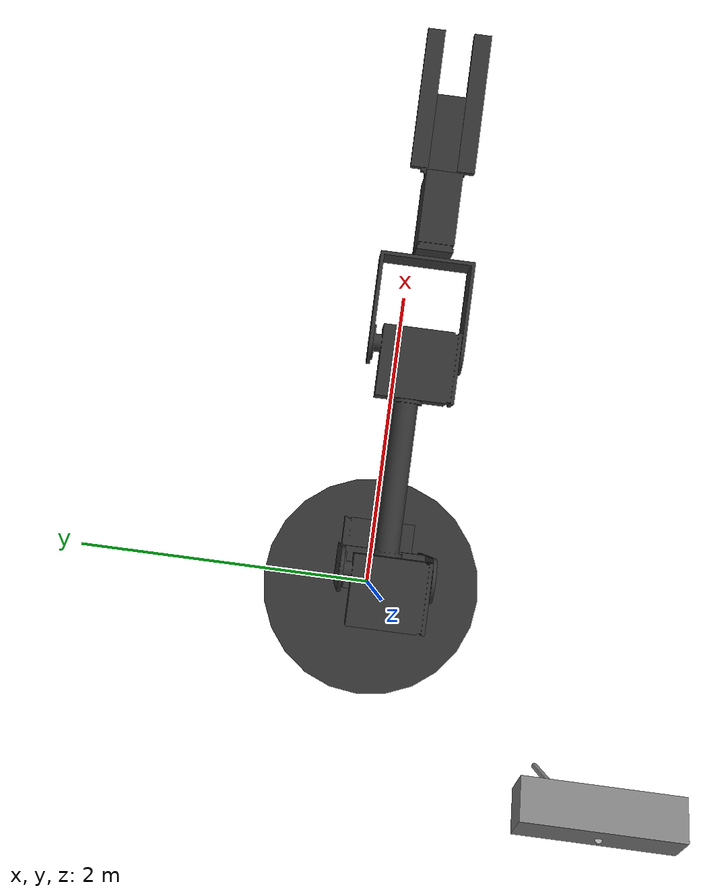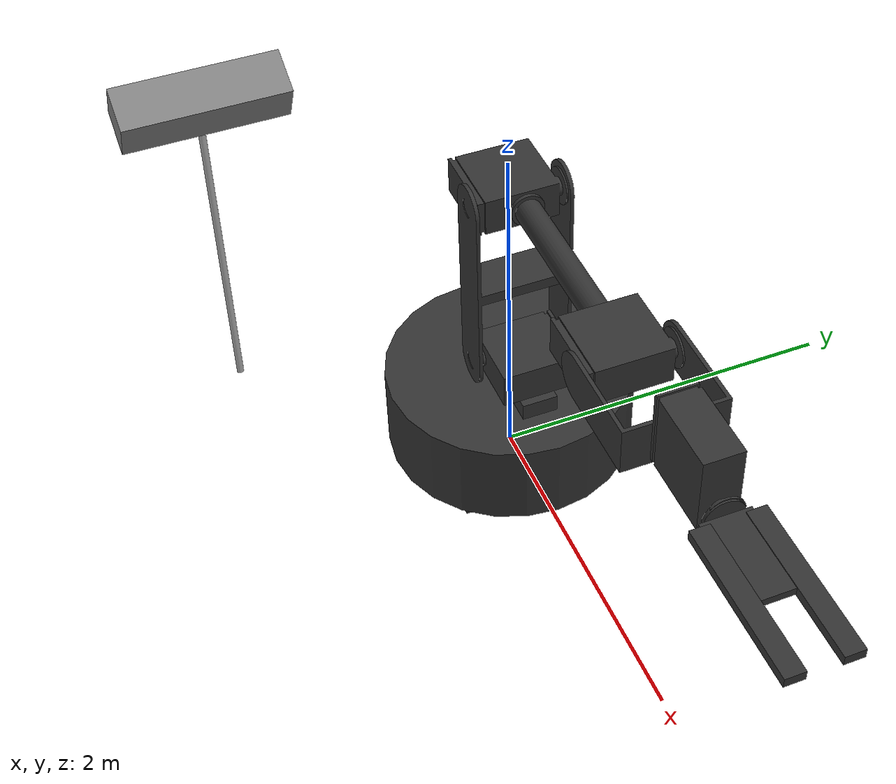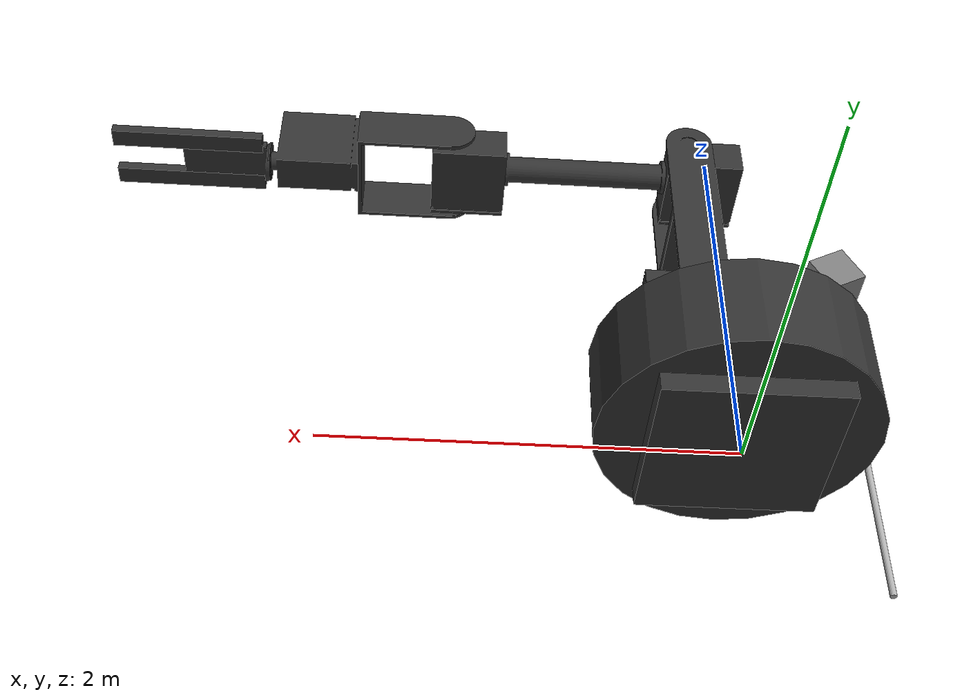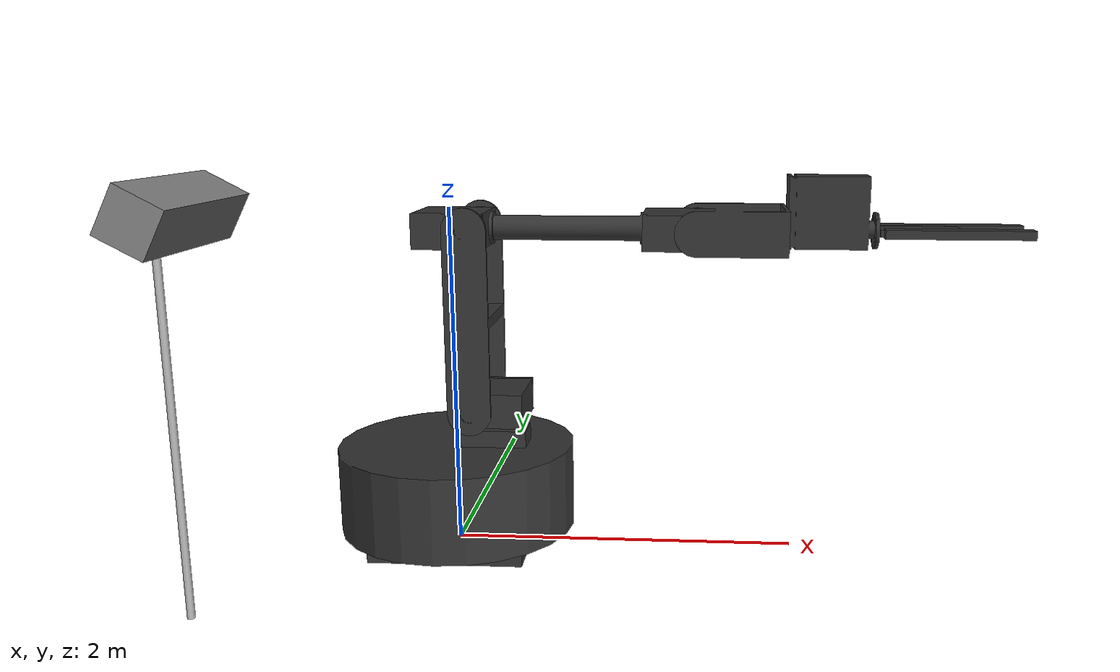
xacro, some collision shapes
<?xml version="1.0"?>

<robot xmlns:xacro="http://www.ros.org/wiki/xacro" name="armkidd">

    <xacro:arg name="is_sim" default="false"/>

    <!--INCLUDES-->
    <xacro:include filename="$(find armkidd_description)/urdf/armkidd_gazebo.xacro"/>
    <xacro:include filename="$(find armkidd_description)/urdf/armkidd_control.xacro"/>
    <xacro:include filename="$(find armkidd_description)/urdf/armkidd_cam.urdf.xacro"/>

    <!-- DEFINITIONS-->
    <xacro:property name="PI" value="3.14159"/>
    <xacro:property name="effort" value="30.0"/>
    <xacro:property name="velocity" value="10.0"/>

    <xacro:macro name="default_inertial" params="mass">
        <inertial>
            <origin xyz="0 0 0" rpy="0 0 0"/>
            <mass value="${mass}"/>
            <inertia ixx="1.0" ixy="0.0" ixz="0.0"
                      iyy="1.0" iyz="0.0"
                      izz="1.0"/>
        </inertial>
    </xacro:macro>

    <!--LINKS-->
    <link name="world"/>

    <link name="base_link">
        <xacro:default_inertial mass="10.0"/>
        <visual>
            <origin rpy="0 0 0" xyz="0 0 0"/>
            <geometry>
                <mesh filename="file://$(find armkidd_description)/meshes/ARM_Base.stl" scale="10 10 10"/>
            </geometry>

            <material name="LightGrey">
                <color rgba="0.2 0.2 0.2 1.0"/>
                <ambient>0.2 0.2 0.2 1</ambient>
                <diffuse>0.2 0.2 0.2 1</diffuse>
            </material>
        </visual>
        <collision>
            <origin rpy="0 0 0" xyz="0 0 0"/>
            <geometry>
                <mesh filename="file://$(find armkidd_description)/meshes/ARM_Base.stl" scale="10 10 10"/>
            </geometry>
        </collision>
    </link>

    <link name="base_link2">
        <xacro:default_inertial mass="10.0"/>
        <visual>
            <origin rpy="0 0 0" xyz="0 0 0"/>
            <geometry>
                <cylinder radius="0.7" length="0.5"/>
            </geometry>

            <material name="LightGrey">
                <color rgba="0.2 0.2 0.2 1.0"/>
                <ambient>0.2 0.2 0.2 1</ambient>
                <diffuse>0.2 0.2 0.2 1</diffuse>
            </material>
        </visual>
        <collision>
            <geometry>
                <cylinder radius="0.7" length="0.5"/>
            </geometry>
        </collision>
    </link>

    <link name="base_servo">
        <xacro:default_inertial mass="0.05"/>
        <visual>
            <origin rpy="0 0 0" xyz="0 0 0"/>
            <geometry>
                <mesh filename="file://$(find armkidd_description)/meshes/ARM_Base_Servo1.stl" scale="10 10 10"/>
            </geometry>

            <material name="LightGrey">
                <color rgba="0.2 0.2 0.2 1.0"/>
                <ambient>0.2 0.2 0.2 1</ambient>
                <diffuse>0.2 0.2 0.2 1</diffuse>
            </material>
        </visual>
        <collision>
            <origin rpy="0 0 0" xyz="0 0 0"/>
            <geometry>
                <mesh filename="file://$(find armkidd_description)/meshes/ARM_Base_Servo1.stl" scale="10 10 10"/>
            </geometry>
        </collision>
    </link>

    <link name="shoulder_servo">
        <xacro:default_inertial mass="0.05"/>
        <visual>
            <origin rpy="0 0 0" xyz="-0.13 0 0"/>
            <geometry>
                <mesh filename="file://$(find armkidd_description)/meshes/ARM_Base_Servo2.stl" scale="10 10 10"/>
            </geometry>

            <material name="LightGrey">
                <color rgba="0.2 0.2 0.2 1.0"/>
                <ambient>0.2 0.2 0.2 1</ambient>
                <diffuse>0.2 0.2 0.2 1</diffuse>
            </material>
        </visual>
        <collision>
            <origin rpy="0 0 0" xyz="-0.13 0 0"/>
            <geometry>
                <mesh filename="file://$(find armkidd_description)/meshes/ARM_Base_Servo2.stl" scale="10 10 10"/>
            </geometry>
        </collision>
    </link>

    <link name="lower_arm">
        <xacro:default_inertial mass="0.02"/>
        <visual>
            <origin rpy="0 0 0" xyz="-0.125 0 -0.85"/>
            <geometry>
                <mesh filename="file://$(find armkidd_description)/meshes/ARM_LowerArm.stl" scale="10 10 10"/>
            </geometry>

            <material name="LightGrey">
                <color rgba="0.2 0.2 0.2 1.0"/>
                <ambient>0.2 0.2 0.2 1</ambient>
                <diffuse>0.2 0.2 0.2 1</diffuse>
            </material>
        </visual>
        <collision>
            <origin rpy="0 0 0" xyz="-0.125 0 -0.85"/>
            <geometry>
                <mesh filename="file://$(find armkidd_description)/meshes/ARM_LowerArm.stl" scale="10 10 10"/>
            </geometry>
        </collision>
    </link>

    <link name="elbow_servo">
        <xacro:default_inertial mass="0.05"/>
        <visual>
            <origin rpy="0 0 0" xyz="-0.125 0 -1.9"/>
            <geometry>
                <mesh filename="file://$(find armkidd_description)/meshes/ARM_Elbow_Servo.stl" scale="10 10 10"/>
            </geometry>

            <material name="LightGrey">
                <color rgba="0.2 0.2 0.2 1.0"/>
                <ambient>0.2 0.2 0.2 1</ambient>
                <diffuse>0.2 0.2 0.2 1</diffuse>
            </material>
        </visual>
        <collision>
            <origin rpy="0 0 0" xyz="-0.125 0 -1.9"/>
            <geometry>
                <mesh filename="file://$(find armkidd_description)/meshes/ARM_Elbow_Servo.stl" scale="10 10 10"/>
            </geometry>
        </collision>
    </link>

    <link name="fore_arm">
        <xacro:default_inertial mass="0.1"/>
        <visual>
            <origin rpy="0 0 0" xyz="-0.12 0 -1.9"/>
            <geometry>
                <mesh filename="file://$(find armkidd_description)/meshes/ARM_UpperArm.stl" scale="10 10 10"/>
            </geometry>

            <material name="LightGrey">
                <color rgba="0.2 0.2 0.2 1.0"/>
                <ambient>0.2 0.2 0.2 1</ambient>
                <diffuse>0.2 0.2 0.2 1</diffuse>
            </material>
        </visual>
        <collision>
            <origin rpy="0 0 0" xyz="-0.12 0 -1.9"/>
            <geometry>
                <mesh filename="file://$(find armkidd_description)/meshes/ARM_UpperArm.stl" scale="10 10 10"/>
            </geometry>
        </collision>
    </link>

    <link name="wrist_servo">
        <xacro:default_inertial mass="0.05"/>
        <visual>
            <origin rpy="0 0 0" xyz="-0.12 0 -1.9"/>
            <geometry>
                <mesh filename="file://$(find armkidd_description)/meshes/ARM_Wrist_Servo.stl" scale="10 10 10"/>
            </geometry>

            <material name="LightGrey">
                <color rgba="0.2 0.2 0.2 1.0"/>
                <ambient>0.2 0.2 0.2 1</ambient>
                <diffuse>0.2 0.2 0.2 1</diffuse>
            </material>
        </visual>
        <collision>
            <origin rpy="0 0 0" xyz="-0.12 0 -1.9"/>
            <geometry>
                <mesh filename="file://$(find armkidd_description)/meshes/ARM_Wrist_Servo.stl" scale="10 10 10"/>
            </geometry>
        </collision>
    </link>

    <link name="wrist_extension">
        <xacro:default_inertial mass="0.01"/>
        <visual>
            <origin rpy="0 0 0" xyz="-1.4 0 -1.9"/>
            <geometry>
                <mesh filename="file://$(find armkidd_description)/meshes/ARM_WristExtend.stl" scale="10 10 10"/>
            </geometry>

            <material name="LightGrey">
                <color rgba="0.2 0.2 0.2 1.0"/>
                <ambient>0.2 0.2 0.2 1</ambient>
                <diffuse>0.2 0.2 0.2 1</diffuse>
            </material>
        </visual>
        <collision>
            <origin rpy="0 0 0" xyz="-1.4 0 -1.9"/>
            <geometry>
                <mesh filename="file://$(find armkidd_description)/meshes/ARM_WristExtend.stl" scale="10 10 10"/>
            </geometry>
        </collision>
    </link>

    <link name="wristX_servo">
        <xacro:default_inertial mass="0.05"/>
        <visual>
            <origin rpy="0 0 0" xyz="-1.91 0 -1.9"/>
            <geometry>
                <mesh filename="file://$(find armkidd_description)/meshes/ARM_WristX_Servo.stl" scale="10 10 10"/>
            </geometry>

            <material name="LightGrey">
                <color rgba="0.2 0.2 0.2 1.0"/>
                <ambient>0.2 0.2 0.2 1</ambient>
                <diffuse>0.2 0.2 0.2 1</diffuse>
            </material>
        </visual>
        <collision>
            <origin rpy="0 0 0" xyz="-1.91 0 -1.9"/>
            <geometry>
                <mesh filename="file://$(find armkidd_description)/meshes/ARM_WristX_Servo.stl" scale="10 10 10"/>
            </geometry>
        </collision>
    </link>

    <link name="arm_hand">
        <xacro:default_inertial mass="0.01"/>
        <visual>
            <origin rpy="0 0 0" xyz="-2.15 0 -1.9"/>
            <geometry>
                <mesh filename="file://$(find armkidd_description)/meshes/ARM_ArmHand.stl" scale="10 10 10"/>
            </geometry>

            <material name="LightGrey">
                <color rgba="0.2 0.2 0.2 1.0"/>
                <ambient>0.2 0.2 0.2 1</ambient>
                <diffuse>0.2 0.2 0.2 1</diffuse>
            </material>
        </visual>
        <collision>
            <origin rpy="0 0 0" xyz="-2.15 0 -1.9"/>
            <geometry>
                <mesh filename="file://$(find armkidd_description)/meshes/ARM_ArmHand.stl" scale="10 10 10"/>
            </geometry>
        </collision>
    </link>

    <link name="end_eff"/>

    <link name="gripper_right">
        <xacro:default_inertial mass="0.01"/>
        <visual>
            <origin rpy="0 0 0" xyz="0.2 0 0"/>
            <geometry>
                <box size="0.8 0.1 0.05"/>
            </geometry>

            <material name="LightGrey">
                <color rgba="0.2 0.2 0.2 1.0"/>
            </material>
        </visual>

        <collision>
            <origin rpy="0 0 0" xyz="0.2 0 0"/>
            <geometry>
                <box size="0.8 0.1 0.05"/>
            </geometry>
        </collision>
    </link>

    <link name="gripper_left">
        <xacro:default_inertial mass="0.01"/>
        <visual>
            <origin rpy="0 0 0" xyz="0.2 0 0"/>
            <geometry>
                <box size="0.8 0.1 0.05"/>
            </geometry>

            <material name="LightGrey">
                <color rgba="0.2 0.2 0.2 1.0"/>
            </material>
        </visual>

        <collision>
            <origin rpy="0 0 0" xyz="0.2 0 0"/>
            <geometry>
                <box size="0.8 0.1 0.05"/>
            </geometry>
        </collision>
    </link>

    <!--JOINTS-->

    <joint name="virtual_joint" type="fixed">
        <parent link="world"/>
        <child link="base_link"/>
        <origin rpy="0 0 0" xyz="0 0 0"/>
    </joint>

    <joint name="arm_extension" type="fixed">
        <parent link="base_link"/>
        <child link="base_link2"/>
        <axis xyz = "0 0 1"/>
        <origin rpy="0 0 0" xyz="0 0 0.35"/>
    </joint>

    <joint name="arm_base" type="fixed">
        <parent link="base_link"/>
        <child link="base_servo"/>
        <axis xyz = "0 0 1"/>
        <origin rpy="0 0 0" xyz="0 0 0"/>
    </joint>

    <joint name="joint_1" type="revolute">
        <parent link="base_servo"/>
        <child link="shoulder_servo"/>
        <axis xyz = "0 0 1"/>
        <origin rpy="0 0 0" xyz="0.13 0 0"/>
        <limit lower="-${PI/2}" upper="${PI/2}" effort="${effort}" velocity="${velocity}"/>
    </joint>

    <joint name="joint_2" type="revolute">
        <parent link="shoulder_servo"/>
        <child link="lower_arm"/>
        <axis xyz = "0 1 0"/>
        <origin rpy="0 0 0" xyz="0 0 0.85"/>
        <limit lower="-${PI/2}" upper="${PI/2}" effort="${effort}" velocity="${velocity}"/>
    </joint>

    <joint name="joint_3" type="revolute">
        <parent link="lower_arm"/>
        <child link="elbow_servo"/>
        <axis xyz = "0 1 0"/>
        <origin rpy="0 0 0" xyz="0 0 1.04"/>
        <limit lower="-${PI/2}" upper="${PI/2}" effort="${effort}" velocity="${velocity}"/>
    </joint>

    <joint name="forearm" type="fixed">
        <parent link="elbow_servo"/>
        <child link="fore_arm"/>
        <origin rpy="0 0 0" xyz="0 0 0"/>
    </joint>

    <joint name="wrist" type="fixed">
        <parent link="fore_arm"/>
        <child link="wrist_servo"/>
        <origin rpy="0 0 0" xyz="0 0 0"/>
    </joint>

    <joint name="joint_4" type="revolute">
        <parent link="wrist_servo"/>
        <child link="wrist_extension"/>
        <axis xyz = "0 1 0"/>
        <origin rpy="0 0 0" xyz="1.28 0 0"/>
        <limit lower="-${PI/2}" upper="${PI/2}" effort="${effort}" velocity="${velocity}"/>
    </joint>

    <joint name="wristXServo" type="fixed">
        <parent link="wrist_extension"/>
        <child link="wristX_servo"/>
        <origin rpy="0 0 0" xyz="0.51 -0.02 0"/>
    </joint>

    <joint name="joint_5" type="revolute">
        <parent link="wristX_servo"/>
        <child link="arm_hand"/>
        <axis xyz = "1 0 0"/>
        <origin rpy="0 0 0" xyz="0.72 -0.005 0"/>
        <limit lower="-${PI/2}" upper="${PI/2}" effort="${effort}" velocity="${velocity}"/>
    </joint>

    <joint name="end_effector" type="fixed">
        <parent link="arm_hand"/>
        <child link="end_eff"/>
        <origin rpy="0 0 0" xyz="1.1 0 0"/>
    </joint>

    <joint name="joint_6" type="prismatic">
        <parent link="arm_hand"/>
        <child link="gripper_right"/>
        <axis xyz="0 -1 0"/>

        <origin rpy="0 0 0" xyz="0 -0.145 0"/>

        <limit lower="0" upper="0.15" effort="${effort}" velocity="${velocity}"/>
    </joint>

    <joint name="joint_7" type="prismatic">
        <parent link="arm_hand"/>
        <child link="gripper_left"/>
        <axis xyz="0 1 0"/>

        <origin rpy="0 0 0" xyz="0 0.120 0"/>

        <limit lower="0" upper="0.15" effort="${effort}" velocity="${velocity}"/>

        <mimic joint="joint_6" multiplier="1"/>
    </joint>

</robot>

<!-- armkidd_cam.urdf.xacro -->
<robot xmlns:xacro="http://www.ros.org/wiki/xacro">

  <xacro:property name="M_PI" value="3.1415926535897931" />

  <xacro:arg name="use_camera" default="false"/>
  <xacro:arg name="prefix" default=""/>
  <xacro:property name="d435_cam_width" value="0.90"/>
  <xacro:property name="d435_cam_height" value="0.25"/>
  <xacro:property name="d435_cam_depth" value="0.2505"/>

  <xacro:property name="d435_cam_depth_to_infra1_offset" value="0.0"/>
  <xacro:property name="d435_cam_depth_to_infra2_offset" value="-0.50"/>
  <xacro:property name="d435_cam_depth_to_color_offset" value="0.15"/>

  <link name="torso_link">
      <inertial>
        <origin xyz="0 0 5.00" />
        <mass value="2.5" />
        <inertia ixx="0.8" ixy="0.0" ixz="0.0" iyy="0.8" iyz="0.0" izz="0.8" />
      </inertial>

      <visual name="holder">
        <origin xyz="0 0 -1.05" rpy="0 0 0" />
        <material name="LightGrey">
          <color rgba="0.7 0.7 0.7 1.0"/>
        </material>
        <geometry>
          <cylinder radius="0.02" length="2.1"/>
        </geometry>
      </visual>
  </link>

  <joint name="base_link_to_torso_link" type="fixed">
    <parent link="base_link"/>
    <child link="torso_link"/>
    <origin xyz="-1.1 -1.3 2.15" rpy="0 0 0"/>
  </joint>

  <joint name="camera_head_joint" type="fixed">
    <parent link="torso_link"/>
    <child link="camera_head_link"/>
    <origin xyz="0 0 0" rpy="0 0.48 0"/>
  </joint>

  <link name="camera_head_link">
      <visual>
        <origin xyz="0.13 0 0" rpy="${M_PI/2} 0.0 ${M_PI/2}"/>
        <geometry>
            <mesh filename="file://$(find armkidd_description)/meshes/d435.stl" scale="10 10 10"/>
        </geometry>
        <material name="aluminum">
            <color rgba="0.5 0.5 0.5 1"/>
        </material>
      </visual>
      <collision>
        <origin xyz="0.13 0 0" rpy="0 0 0"/>
        <geometry>
            <box size="${d435_cam_depth} ${d435_cam_width} ${d435_cam_height}"/>
        </geometry>
      </collision>
      <inertial>
        <mass value="0.072" />
        <origin xyz="0 0 0" />
        <inertia ixx="0.003881243" ixy="0.0" ixz="0.0" iyy="0.000498940" iyz="0.0" izz="0.003879257" />
      </inertial>
  </link>

  <joint name="camera_head_depth_joint" type="fixed">
    <origin xyz="0 0 0" rpy="0 0 0"/>
    <parent link="camera_head_link"/>
    <child link="camera_head_depth_frame" />
  </joint>
  <link name="camera_head_depth_frame"/>

  <joint name="camera_head_depth_optical_joint" type="fixed">
    <origin xyz="0 0 0" rpy="${-M_PI/2} 0 ${-M_PI/2}" />
    <parent link="camera_head_depth_frame" />
    <child link="camera_head_depth_optical_frame" />
  </joint>
  <link name="camera_head_depth_optical_frame"/>

  <joint name="camera_head_infra1_joint" type="fixed">
    <origin xyz="0 ${d435_cam_depth_to_infra1_offset} 0" rpy="0 0 0" />
    <parent link="camera_head_link" />
    <child link="camera_head_infra1_frame" />
  </joint>
  <link name="camera_head_infra1_frame"/>

  <joint name="camera_head_infra1_optical_joint" type="fixed">
    <origin xyz="0 0 0" rpy="${-M_PI/2} 0 ${-M_PI/2}" />
    <parent link="camera_head_infra1_frame" />
    <child link="camera_head_infra1_optical_frame" />
  </joint>
  <link name="camera_head_infra1_optical_frame"/>

  <joint name="camera_head_infra2_joint" type="fixed">
    <origin xyz="0 ${d435_cam_depth_to_infra2_offset} 0" rpy="0 0 0" />
    <parent link="camera_head_link" />
    <child link="camera_head_infra2_frame" />
  </joint>
  <link name="camera_head_infra2_frame"/>

  <joint name="camera_head_infra2_optical_joint" type="fixed">
    <origin xyz="0 0 0" rpy="${-M_PI/2} 0 ${-M_PI/2}" />
    <parent link="camera_head_infra2_frame" />
    <child link="camera_head_infra2_optical_frame" />
  </joint>
  <link name="camera_head_infra2_optical_frame"/>

  <link name="camera_head_color_frame"/>

  <link name="camera_head_adj"/>

  <joint name="camera_head_color_joint" type="fixed">
    <origin xyz="0 ${d435_cam_depth_to_color_offset} 0" rpy="0 0 0" />
    <parent link="camera_head_link" />
    <child link="camera_head_color_frame" />
  </joint>

  <joint name="camera_head_adjusted_link" type="fixed">
    <origin xyz="0 ${d435_cam_depth_to_color_offset} 0" rpy="0 1.57 0" />
    <parent link="camera_head_link" />
    <child link="camera_head_adj" />
  </joint>

  <xacro:if value="${'true' == '$(arg use_camera)'}">
    <gazebo reference="camera_head_link">
      <sensor name="rgbd_camera" type="rgbd_camera">
        <always_on>true</always_on>
        <visualize>true</visualize>
        <update_rate>30.0</update_rate>

        <topic>head_camera/depth_registered</topic>
        <gz_frame_id>camera_head_link</gz_frame_id>

        <camera>
          <horizontal_fov>1.15</horizontal_fov>
          <vertical_fov>0.71</vertical_fov>
          <image>
            <width>640</width>
            <height>480</height>
            <format>R8G8B8</format>
          </image>

          <clip>
            <near>0.05</near>
            <far>10.0</far>
          </clip>

          <distortion>
            <k1>0.0</k1>
            <k2>0.0</k2>
            <k3>0.0</k3>
            <p1>0.0</p1>
            <p2>0.0</p2>
            <center>0.5 0.5</center>
          </distortion>
        </camera>

        <!-- Depth camera settings -->
        <depth_camera>
          <output_format>FLOAT32</output_format>
          <clip>
            <near>0.2</near>
            <far>10.0</far>
          </clip>
        </depth_camera>

        <!-- Optionally specify optical frame -->
      </sensor>
    </gazebo>
  </xacro:if>

</robot>
